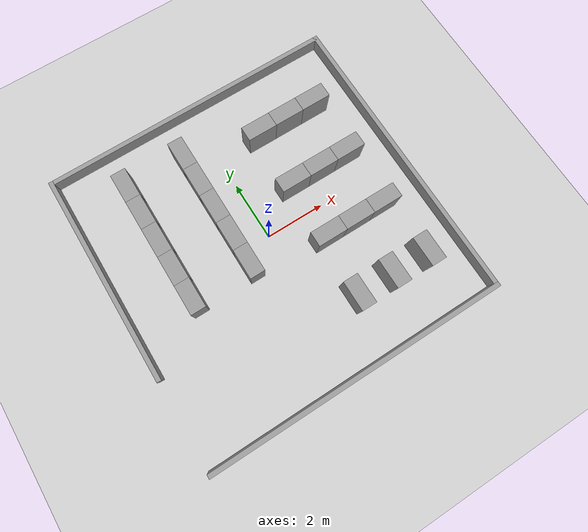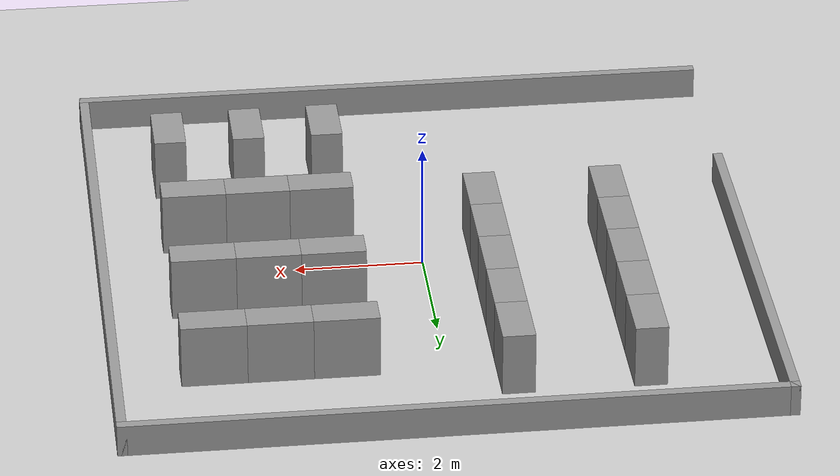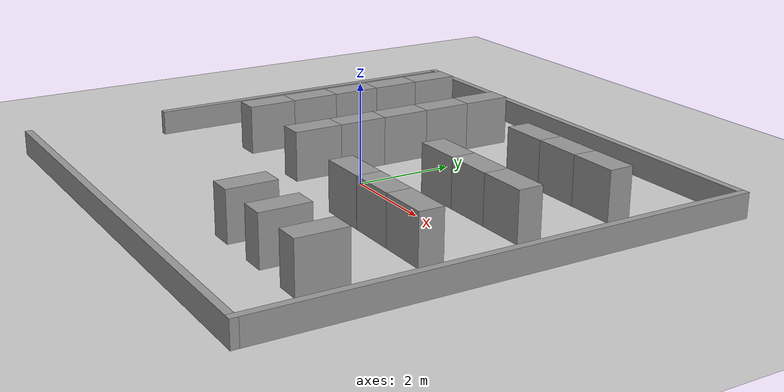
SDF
<sdf version="1.6">
 <world name="default">
  <light name="sun" type="directional">
   <pose>0 0 10 0 -0 0</pose>
   <diffuse>0.8 0.8 0.8 1</diffuse>
   <specular>0.1 0.1 0.1 1</specular>
   <attenuation>
    <range>1000</range>
    <constant>0.9</constant>
    <linear>0.01</linear>
    <quadratic>0.001</quadratic>
   </attenuation>
   <direction>-0.5 0.5 -1</direction>
  </light>
  <model name="ground_plane">
   <static>1</static>
   <link name="link">
    <collision name="collision">
     <geometry><plane><normal>0 0 1</normal><size>100 100</size></plane></geometry>
     <surface><friction><ode><mu>100</mu><mu2>50</mu2></ode></friction></surface>
    </collision>
    <visual name="visual">
     <cast_shadows>0</cast_shadows>
     <geometry><plane><normal>0 0 1</normal><size>100 100</size></plane></geometry>
     <material>
      <script><uri>file://media/materials/scripts/gazebo.material</uri><name>Gazebo/Grey</name></script>
     </material>
    </visual>
   </link>
  </model>
  <gravity>0 0 -9.8</gravity>
  <magnetic_field>6e-06 2.3e-05 -4.2e-05</magnetic_field>
  <atmosphere type="adiabatic"/>
  <physics name="default_physics" default="0" type="ode">
   <max_step_size>0.001</max_step_size>
   <real_time_factor>1</real_time_factor>
   <real_time_update_rate>1000</real_time_update_rate>
  </physics>
  <scene><ambient>0.4 0.4 0.4 1</ambient><background>0.7 0.7 0.7 1</background><shadows>1</shadows></scene>
  <spherical_coordinates>
   <surface_model>EARTH_WGS84</surface_model>
   <latitude_deg>0</latitude_deg>
   <longitude_deg>0</longitude_deg>
   <elevation>0</elevation>
   <heading_deg>0</heading_deg>
  </spherical_coordinates>
  <model name="room">
   <link name="Wall_1">
    <collision name="Wall_1_Collision">
     <geometry><box><size>10.15 0.15 0.5</size></box></geometry>
     <pose>0 0 0.25 0 -0 0</pose>
    </collision>
    <visual name="Wall_1_Visual">
     <pose>0 0 0.25 0 -0 0</pose>
     <geometry><box><size>10.15 0.15 0.5</size></box></geometry>
     <material>
      <script><uri>file://media/materials/scripts/gazebo.material</uri><name>Gazebo/Grey</name></script>
      <ambient>1 1 1 1</ambient>
     </material>
    </visual>
    <pose>0 5 0 0 -0 0</pose>
   </link>
   <link name="Wall_2">
    <collision name="Wall_2_Collision">
     <geometry><box><size>10.15 0.15 0.5</size></box></geometry>
     <pose>0 0 0.25 0 -0 0</pose>
    </collision>
    <visual name="Wall_2_Visual">
     <pose>0 0 0.25 0 -0 0</pose>
     <geometry><box><size>10.15 0.15 0.5</size></box></geometry>
     <material>
      <script><uri>file://media/materials/scripts/gazebo.material</uri><name>Gazebo/Grey</name></script>
      <ambient>1 1 1 1</ambient>
     </material>
    </visual>
    <pose>5 0 0 0 0 -1.5708</pose>
   </link>
   <link name="Wall_3">
    <collision name="Wall_3_Collision">
     <geometry><box><size>10.15 0.15 0.5</size></box></geometry>
     <pose>0 0 0.25 0 -0 0</pose>
    </collision>
    <visual name="Wall_3_Visual">
     <pose>0 0 0.25 0 -0 0</pose>
     <geometry><box><size>10.15 0.15 0.5</size></box></geometry>
     <material>
      <script><uri>file://media/materials/scripts/gazebo.material</uri><name>Gazebo/Grey</name></script>
      <ambient>1 1 1 1</ambient>
     </material>
    </visual>
    <pose>0 -5 0 0 -0 3.14159</pose>
   </link>
   <link name="Wall_7">
    <collision name="Wall_7_Collision">
     <geometry><box><size>7.15 0.15 0.5</size></box></geometry>
     <pose>0 0 0.25 0 -0 0</pose>
    </collision>
    <visual name="Wall_7_Visual">
     <pose>0 0 0.25 0 -0 0</pose>
     <geometry><box><size>7.15 0.15 0.5</size></box></geometry>
     <material>
      <script><uri>file://media/materials/scripts/gazebo.material</uri><name>Gazebo/Grey</name></script>
      <ambient>1 1 1 1</ambient>
     </material>
    </visual>
    <pose>-5 1.5 0 0 0 -1.5708</pose>
   </link>
   <static>1</static>
  </model>
  <model name="stack_0">
   <link name="link_0">
    <inertial>
     <mass>100</mass>
     <inertia>
      <ixx>0.166667</ixx>
      <ixy>0</ixy>
      <ixz>0</ixz>
      <iyy>0.166667</iyy>
      <iyz>0</iyz>
      <izz>0.166667</izz>
     </inertia>
    </inertial>
    <visual name="visual">
     <geometry><box><size>0.5 1 1</size></box></geometry>
     <material>
      <lighting>1</lighting>
      <script><uri>file://media/materials/scripts/gazebo.material</uri><name>Gazebo/Grey</name></script>
      <ambient>0.3 0.3 0.3 1</ambient>
      <diffuse>0.7 0.7 0.7 1</diffuse>
      <specular>0.01 0.01 0.01 1</specular>
      <emissive>0 0 0 1</emissive>
      <shader type="vertex"><normal_map>__default__</normal_map></shader>
     </material>
    </visual>
    <collision name="collision">
     <geometry><box><size>0.5 1 1</size></box></geometry>
     <surface>
      <friction>
       <ode><mu>1</mu><mu2>1</mu2><fdir1>0 0 0</fdir1><slip1>0</slip1><slip2>0</slip2></ode>
       <torsional>
        <coefficient>1</coefficient>
        <patch_radius>0</patch_radius>
        <surface_radius>0</surface_radius>
        <use_patch_radius>1</use_patch_radius>
        <ode><slip>0</slip></ode>
       </torsional>
      </friction>
      <bounce><restitution_coefficient>0</restitution_coefficient><threshold>1e+06</threshold></bounce>
      <contact>
       <collide_without_contact>0</collide_without_contact>
       <collide_without_contact_bitmask>1</collide_without_contact_bitmask>
       <collide_bitmask>1</collide_bitmask>
       <ode>
        <soft_cfm>0</soft_cfm>
        <soft_erp>0.2</soft_erp>
        <kp>1e+13</kp>
        <kd>1</kd>
        <max_vel>0.01</max_vel>
        <min_depth>0</min_depth>
       </ode>
       <bullet>
        <split_impulse>1</split_impulse>
        <split_impulse_penetration_threshold>-0.01</split_impulse_penetration_threshold>
        <soft_cfm>0</soft_cfm>
        <soft_erp>0.2</soft_erp>
        <kp>1e+13</kp>
        <kd>1</kd>
       </bullet>
      </contact>
     </surface>
    </collision>
   </link>
   <static>1</static>
   <pose>-3 2.5 0.5 0 -0 0</pose>
  </model>
  <model name="stack_1">
   <link name="link_0">
    <inertial>
     <mass>100</mass>
     <inertia>
      <ixx>0.166667</ixx>
      <ixy>0</ixy>
      <ixz>0</ixz>
      <iyy>0.166667</iyy>
      <iyz>0</iyz>
      <izz>0.166667</izz>
     </inertia>
    </inertial>
    <visual name="visual">
     <geometry><box><size>0.5 1 1</size></box></geometry>
     <material>
      <lighting>1</lighting>
      <script><uri>file://media/materials/scripts/gazebo.material</uri><name>Gazebo/Grey</name></script>
      <ambient>0.3 0.3 0.3 1</ambient>
      <diffuse>0.7 0.7 0.7 1</diffuse>
      <specular>0.01 0.01 0.01 1</specular>
      <emissive>0 0 0 1</emissive>
      <shader type="vertex"><normal_map>__default__</normal_map></shader>
     </material>
    </visual>
    <collision name="collision">
     <geometry><box><size>0.5 1 1</size></box></geometry>
     <surface>
      <friction>
       <ode><mu>1</mu><mu2>1</mu2><fdir1>0 0 0</fdir1><slip1>0</slip1><slip2>0</slip2></ode>
       <torsional>
        <coefficient>1</coefficient>
        <patch_radius>0</patch_radius>
        <surface_radius>0</surface_radius>
        <use_patch_radius>1</use_patch_radius>
        <ode><slip>0</slip></ode>
       </torsional>
      </friction>
      <bounce><restitution_coefficient>0</restitution_coefficient><threshold>1e+06</threshold></bounce>
      <contact>
       <collide_without_contact>0</collide_without_contact>
       <collide_without_contact_bitmask>1</collide_without_contact_bitmask>
       <collide_bitmask>1</collide_bitmask>
       <ode>
        <soft_cfm>0</soft_cfm>
        <soft_erp>0.2</soft_erp>
        <kp>1e+13</kp>
        <kd>1</kd>
        <max_vel>0.01</max_vel>
        <min_depth>0</min_depth>
       </ode>
       <bullet>
        <split_impulse>1</split_impulse>
        <split_impulse_penetration_threshold>-0.01</split_impulse_penetration_threshold>
        <soft_cfm>0</soft_cfm>
        <soft_erp>0.2</soft_erp>
        <kp>1e+13</kp>
        <kd>1</kd>
       </bullet>
      </contact>
     </surface>
    </collision>
   </link>
   <static>1</static>
   <pose>-3 1.5 0.5 0 -0 0</pose>
  </model>
  <model name="stack_2">
   <link name="link_0">
    <inertial>
     <mass>100</mass>
     <inertia>
      <ixx>0.166667</ixx>
      <ixy>0</ixy>
      <ixz>0</ixz>
      <iyy>0.166667</iyy>
      <iyz>0</iyz>
      <izz>0.166667</izz>
     </inertia>
    </inertial>
    <visual name="visual">
     <geometry><box><size>0.5 1 1</size></box></geometry>
     <material>
      <lighting>1</lighting>
      <script><uri>file://media/materials/scripts/gazebo.material</uri><name>Gazebo/Grey</name></script>
      <ambient>0.3 0.3 0.3 1</ambient>
      <diffuse>0.7 0.7 0.7 1</diffuse>
      <specular>0.01 0.01 0.01 1</specular>
      <emissive>0 0 0 1</emissive>
      <shader type="vertex"><normal_map>__default__</normal_map></shader>
     </material>
    </visual>
    <collision name="collision">
     <geometry><box><size>0.5 1 1</size></box></geometry>
     <surface>
      <friction>
       <ode><mu>1</mu><mu2>1</mu2><fdir1>0 0 0</fdir1><slip1>0</slip1><slip2>0</slip2></ode>
       <torsional>
        <coefficient>1</coefficient>
        <patch_radius>0</patch_radius>
        <surface_radius>0</surface_radius>
        <use_patch_radius>1</use_patch_radius>
        <ode><slip>0</slip></ode>
       </torsional>
      </friction>
      <bounce><restitution_coefficient>0</restitution_coefficient><threshold>1e+06</threshold></bounce>
      <contact>
       <collide_without_contact>0</collide_without_contact>
       <collide_without_contact_bitmask>1</collide_without_contact_bitmask>
       <collide_bitmask>1</collide_bitmask>
       <ode>
        <soft_cfm>0</soft_cfm>
        <soft_erp>0.2</soft_erp>
        <kp>1e+13</kp>
        <kd>1</kd>
        <max_vel>0.01</max_vel>
        <min_depth>0</min_depth>
       </ode>
       <bullet>
        <split_impulse>1</split_impulse>
        <split_impulse_penetration_threshold>-0.01</split_impulse_penetration_threshold>
        <soft_cfm>0</soft_cfm>
        <soft_erp>0.2</soft_erp>
        <kp>1e+13</kp>
        <kd>1</kd>
       </bullet>
      </contact>
     </surface>
    </collision>
   </link>
   <static>1</static>
   <pose>-3 0.5 0.5 0 -0 0</pose>
  </model>
  <model name="stack_3">
   <link name="link_0">
    <inertial>
     <mass>100</mass>
     <inertia>
      <ixx>0.166667</ixx>
      <ixy>0</ixy>
      <ixz>0</ixz>
      <iyy>0.166667</iyy>
      <iyz>0</iyz>
      <izz>0.166667</izz>
     </inertia>
    </inertial>
    <visual name="visual">
     <geometry><box><size>0.5 1 1</size></box></geometry>
     <material>
      <lighting>1</lighting>
      <script><uri>file://media/materials/scripts/gazebo.material</uri><name>Gazebo/Grey</name></script>
      <ambient>0.3 0.3 0.3 1</ambient>
      <diffuse>0.7 0.7 0.7 1</diffuse>
      <specular>0.01 0.01 0.01 1</specular>
      <emissive>0 0 0 1</emissive>
      <shader type="vertex"><normal_map>__default__</normal_map></shader>
     </material>
    </visual>
    <collision name="collision">
     <geometry><box><size>0.5 1 1</size></box></geometry>
     <surface>
      <friction>
       <ode><mu>1</mu><mu2>1</mu2><fdir1>0 0 0</fdir1><slip1>0</slip1><slip2>0</slip2></ode>
       <torsional>
        <coefficient>1</coefficient>
        <patch_radius>0</patch_radius>
        <surface_radius>0</surface_radius>
        <use_patch_radius>1</use_patch_radius>
        <ode><slip>0</slip></ode>
       </torsional>
      </friction>
      <bounce><restitution_coefficient>0</restitution_coefficient><threshold>1e+06</threshold></bounce>
      <contact>
       <collide_without_contact>0</collide_without_contact>
       <collide_without_contact_bitmask>1</collide_without_contact_bitmask>
       <collide_bitmask>1</collide_bitmask>
       <ode>
        <soft_cfm>0</soft_cfm>
        <soft_erp>0.2</soft_erp>
        <kp>1e+13</kp>
        <kd>1</kd>
        <max_vel>0.01</max_vel>
        <min_depth>0</min_depth>
       </ode>
       <bullet>
        <split_impulse>1</split_impulse>
        <split_impulse_penetration_threshold>-0.01</split_impulse_penetration_threshold>
        <soft_cfm>0</soft_cfm>
        <soft_erp>0.2</soft_erp>
        <kp>1e+13</kp>
        <kd>1</kd>
       </bullet>
      </contact>
     </surface>
    </collision>
   </link>
   <static>1</static>
   <pose>-3 3.5 0.5 0 -0 0</pose>
  </model>
  <model name="stack_4">
   <link name="link_0">
    <inertial>
     <mass>100</mass>
     <inertia>
      <ixx>0.166667</ixx>
      <ixy>0</ixy>
      <ixz>0</ixz>
      <iyy>0.166667</iyy>
      <iyz>0</iyz>
      <izz>0.166667</izz>
     </inertia>
    </inertial>
    <visual name="visual">
     <geometry><box><size>0.5 1 1</size></box></geometry>
     <material>
      <lighting>1</lighting>
      <script><uri>file://media/materials/scripts/gazebo.material</uri><name>Gazebo/Grey</name></script>
      <ambient>0.3 0.3 0.3 1</ambient>
      <diffuse>0.7 0.7 0.7 1</diffuse>
      <specular>0.01 0.01 0.01 1</specular>
      <emissive>0 0 0 1</emissive>
      <shader type="vertex"><normal_map>__default__</normal_map></shader>
     </material>
    </visual>
    <collision name="collision">
     <geometry><box><size>0.5 1 1</size></box></geometry>
     <surface>
      <friction>
       <ode><mu>1</mu><mu2>1</mu2><fdir1>0 0 0</fdir1><slip1>0</slip1><slip2>0</slip2></ode>
       <torsional>
        <coefficient>1</coefficient>
        <patch_radius>0</patch_radius>
        <surface_radius>0</surface_radius>
        <use_patch_radius>1</use_patch_radius>
        <ode><slip>0</slip></ode>
       </torsional>
      </friction>
      <bounce><restitution_coefficient>0</restitution_coefficient><threshold>1e+06</threshold></bounce>
      <contact>
       <collide_without_contact>0</collide_without_contact>
       <collide_without_contact_bitmask>1</collide_without_contact_bitmask>
       <collide_bitmask>1</collide_bitmask>
       <ode>
        <soft_cfm>0</soft_cfm>
        <soft_erp>0.2</soft_erp>
        <kp>1e+13</kp>
        <kd>1</kd>
        <max_vel>0.01</max_vel>
        <min_depth>0</min_depth>
       </ode>
       <bullet>
        <split_impulse>1</split_impulse>
        <split_impulse_penetration_threshold>-0.01</split_impulse_penetration_threshold>
        <soft_cfm>0</soft_cfm>
        <soft_erp>0.2</soft_erp>
        <kp>1e+13</kp>
        <kd>1</kd>
       </bullet>
      </contact>
     </surface>
    </collision>
   </link>
   <static>1</static>
   <pose>-1 3.5 0.5 0 -0 0</pose>
  </model>
  <model name="stack_5">
   <link name="link_0">
    <inertial>
     <mass>100</mass>
     <inertia>
      <ixx>0.166667</ixx>
      <ixy>0</ixy>
      <ixz>0</ixz>
      <iyy>0.166667</iyy>
      <iyz>0</iyz>
      <izz>0.166667</izz>
     </inertia>
    </inertial>
    <visual name="visual">
     <geometry><box><size>0.5 1 1</size></box></geometry>
     <material>
      <lighting>1</lighting>
      <script><uri>file://media/materials/scripts/gazebo.material</uri><name>Gazebo/Grey</name></script>
      <ambient>0.3 0.3 0.3 1</ambient>
      <diffuse>0.7 0.7 0.7 1</diffuse>
      <specular>0.01 0.01 0.01 1</specular>
      <emissive>0 0 0 1</emissive>
      <shader type="vertex"><normal_map>__default__</normal_map></shader>
     </material>
    </visual>
    <collision name="collision">
     <geometry><box><size>0.5 1 1</size></box></geometry>
     <surface>
      <friction>
       <ode><mu>1</mu><mu2>1</mu2><fdir1>0 0 0</fdir1><slip1>0</slip1><slip2>0</slip2></ode>
       <torsional>
        <coefficient>1</coefficient>
        <patch_radius>0</patch_radius>
        <surface_radius>0</surface_radius>
        <use_patch_radius>1</use_patch_radius>
        <ode><slip>0</slip></ode>
       </torsional>
      </friction>
      <bounce><restitution_coefficient>0</restitution_coefficient><threshold>1e+06</threshold></bounce>
      <contact>
       <collide_without_contact>0</collide_without_contact>
       <collide_without_contact_bitmask>1</collide_without_contact_bitmask>
       <collide_bitmask>1</collide_bitmask>
       <ode>
        <soft_cfm>0</soft_cfm>
        <soft_erp>0.2</soft_erp>
        <kp>1e+13</kp>
        <kd>1</kd>
        <max_vel>0.01</max_vel>
        <min_depth>0</min_depth>
       </ode>
       <bullet>
        <split_impulse>1</split_impulse>
        <split_impulse_penetration_threshold>-0.01</split_impulse_penetration_threshold>
        <soft_cfm>0</soft_cfm>
        <soft_erp>0.2</soft_erp>
        <kp>1e+13</kp>
        <kd>1</kd>
       </bullet>
      </contact>
     </surface>
    </collision>
   </link>
   <static>1</static>
   <pose>-1 2.5 0.5 0 -0 0</pose>
  </model>
  <model name="stack_6">
   <link name="link_0">
    <inertial>
     <mass>100</mass>
     <inertia>
      <ixx>0.166667</ixx>
      <ixy>0</ixy>
      <ixz>0</ixz>
      <iyy>0.166667</iyy>
      <iyz>0</iyz>
      <izz>0.166667</izz>
     </inertia>
    </inertial>
    <visual name="visual">
     <geometry><box><size>0.5 1 1</size></box></geometry>
     <material>
      <lighting>1</lighting>
      <script><uri>file://media/materials/scripts/gazebo.material</uri><name>Gazebo/Grey</name></script>
      <ambient>0.3 0.3 0.3 1</ambient>
      <diffuse>0.7 0.7 0.7 1</diffuse>
      <specular>0.01 0.01 0.01 1</specular>
      <emissive>0 0 0 1</emissive>
      <shader type="vertex"><normal_map>__default__</normal_map></shader>
     </material>
    </visual>
    <collision name="collision">
     <geometry><box><size>0.5 1 1</size></box></geometry>
     <surface>
      <friction>
       <ode><mu>1</mu><mu2>1</mu2><fdir1>0 0 0</fdir1><slip1>0</slip1><slip2>0</slip2></ode>
       <torsional>
        <coefficient>1</coefficient>
        <patch_radius>0</patch_radius>
        <surface_radius>0</surface_radius>
        <use_patch_radius>1</use_patch_radius>
        <ode><slip>0</slip></ode>
       </torsional>
      </friction>
      <bounce><restitution_coefficient>0</restitution_coefficient><threshold>1e+06</threshold></bounce>
      <contact>
       <collide_without_contact>0</collide_without_contact>
       <collide_without_contact_bitmask>1</collide_without_contact_bitmask>
       <collide_bitmask>1</collide_bitmask>
       <ode>
        <soft_cfm>0</soft_cfm>
        <soft_erp>0.2</soft_erp>
        <kp>1e+13</kp>
        <kd>1</kd>
        <max_vel>0.01</max_vel>
        <min_depth>0</min_depth>
       </ode>
       <bullet>
        <split_impulse>1</split_impulse>
        <split_impulse_penetration_threshold>-0.01</split_impulse_penetration_threshold>
        <soft_cfm>0</soft_cfm>
        <soft_erp>0.2</soft_erp>
        <kp>1e+13</kp>
        <kd>1</kd>
       </bullet>
      </contact>
     </surface>
    </collision>
   </link>
   <static>1</static>
   <pose>-1 1.5 0.5 0 -0 0</pose>
  </model>
  <model name="stack_7">
   <link name="link_0">
    <inertial>
     <mass>100</mass>
     <inertia>
      <ixx>0.166667</ixx>
      <ixy>0</ixy>
      <ixz>0</ixz>
      <iyy>0.166667</iyy>
      <iyz>0</iyz>
      <izz>0.166667</izz>
     </inertia>
    </inertial>
    <visual name="visual">
     <geometry><box><size>0.5 1 1</size></box></geometry>
     <material>
      <lighting>1</lighting>
      <script><uri>file://media/materials/scripts/gazebo.material</uri><name>Gazebo/Grey</name></script>
      <ambient>0.3 0.3 0.3 1</ambient>
      <diffuse>0.7 0.7 0.7 1</diffuse>
      <specular>0.01 0.01 0.01 1</specular>
      <emissive>0 0 0 1</emissive>
      <shader type="vertex"><normal_map>__default__</normal_map></shader>
     </material>
    </visual>
    <collision name="collision">
     <geometry><box><size>0.5 1 1</size></box></geometry>
     <surface>
      <friction>
       <ode><mu>1</mu><mu2>1</mu2><fdir1>0 0 0</fdir1><slip1>0</slip1><slip2>0</slip2></ode>
       <torsional>
        <coefficient>1</coefficient>
        <patch_radius>0</patch_radius>
        <surface_radius>0</surface_radius>
        <use_patch_radius>1</use_patch_radius>
        <ode><slip>0</slip></ode>
       </torsional>
      </friction>
      <bounce><restitution_coefficient>0</restitution_coefficient><threshold>1e+06</threshold></bounce>
      <contact>
       <collide_without_contact>0</collide_without_contact>
       <collide_without_contact_bitmask>1</collide_without_contact_bitmask>
       <collide_bitmask>1</collide_bitmask>
       <ode>
        <soft_cfm>0</soft_cfm>
        <soft_erp>0.2</soft_erp>
        <kp>1e+13</kp>
        <kd>1</kd>
        <max_vel>0.01</max_vel>
        <min_depth>0</min_depth>
       </ode>
       <bullet>
        <split_impulse>1</split_impulse>
        <split_impulse_penetration_threshold>-0.01</split_impulse_penetration_threshold>
        <soft_cfm>0</soft_cfm>
        <soft_erp>0.2</soft_erp>
        <kp>1e+13</kp>
        <kd>1</kd>
       </bullet>
      </contact>
     </surface>
    </collision>
   </link>
   <static>1</static>
   <pose>-1 0.5 0.5 0 -0 0</pose>
  </model>
  <model name="stack_8">
   <link name="link_0">
    <inertial>
     <mass>100</mass>
     <inertia>
      <ixx>0.166667</ixx>
      <ixy>0</ixy>
      <ixz>0</ixz>
      <iyy>0.166667</iyy>
      <iyz>0</iyz>
      <izz>0.166667</izz>
     </inertia>
    </inertial>
    <visual name="visual">
     <geometry><box><size>0.5 1 1</size></box></geometry>
     <material>
      <lighting>1</lighting>
      <script><uri>file://media/materials/scripts/gazebo.material</uri><name>Gazebo/Grey</name></script>
      <ambient>0.3 0.3 0.3 1</ambient>
      <diffuse>0.7 0.7 0.7 1</diffuse>
      <specular>0.01 0.01 0.01 1</specular>
      <emissive>0 0 0 1</emissive>
      <shader type="vertex"><normal_map>__default__</normal_map></shader>
     </material>
    </visual>
    <collision name="collision">
     <geometry><box><size>0.5 1 1</size></box></geometry>
     <surface>
      <friction>
       <ode><mu>1</mu><mu2>1</mu2><fdir1>0 0 0</fdir1><slip1>0</slip1><slip2>0</slip2></ode>
       <torsional>
        <coefficient>1</coefficient>
        <patch_radius>0</patch_radius>
        <surface_radius>0</surface_radius>
        <use_patch_radius>1</use_patch_radius>
        <ode><slip>0</slip></ode>
       </torsional>
      </friction>
      <bounce><restitution_coefficient>0</restitution_coefficient><threshold>1e+06</threshold></bounce>
      <contact>
       <collide_without_contact>0</collide_without_contact>
       <collide_without_contact_bitmask>1</collide_without_contact_bitmask>
       <collide_bitmask>1</collide_bitmask>
       <ode>
        <soft_cfm>0</soft_cfm>
        <soft_erp>0.2</soft_erp>
        <kp>1e+13</kp>
        <kd>1</kd>
        <max_vel>0.01</max_vel>
        <min_depth>0</min_depth>
       </ode>
       <bullet>
        <split_impulse>1</split_impulse>
        <split_impulse_penetration_threshold>-0.01</split_impulse_penetration_threshold>
        <soft_cfm>0</soft_cfm>
        <soft_erp>0.2</soft_erp>
        <kp>1e+13</kp>
        <kd>1</kd>
       </bullet>
      </contact>
     </surface>
    </collision>
   </link>
   <static>1</static>
   <pose>1.5 3 0.5 0 -0 1.57</pose>
  </model>
  <model name="stack_9">
   <link name="link_0">
    <inertial>
     <mass>100</mass>
     <inertia>
      <ixx>0.166667</ixx>
      <ixy>0</ixy>
      <ixz>0</ixz>
      <iyy>0.166667</iyy>
      <iyz>0</iyz>
      <izz>0.166667</izz>
     </inertia>
    </inertial>
    <visual name="visual">
     <geometry><box><size>0.5 1 1</size></box></geometry>
     <material>
      <lighting>1</lighting>
      <script><uri>file://media/materials/scripts/gazebo.material</uri><name>Gazebo/Grey</name></script>
      <ambient>0.3 0.3 0.3 1</ambient>
      <diffuse>0.7 0.7 0.7 1</diffuse>
      <specular>0.01 0.01 0.01 1</specular>
      <emissive>0 0 0 1</emissive>
      <shader type="vertex"><normal_map>__default__</normal_map></shader>
     </material>
    </visual>
    <collision name="collision">
     <geometry><box><size>0.5 1 1</size></box></geometry>
     <surface>
      <friction>
       <ode><mu>1</mu><mu2>1</mu2><fdir1>0 0 0</fdir1><slip1>0</slip1><slip2>0</slip2></ode>
       <torsional>
        <coefficient>1</coefficient>
        <patch_radius>0</patch_radius>
        <surface_radius>0</surface_radius>
        <use_patch_radius>1</use_patch_radius>
        <ode><slip>0</slip></ode>
       </torsional>
      </friction>
      <bounce><restitution_coefficient>0</restitution_coefficient><threshold>1e+06</threshold></bounce>
      <contact>
       <collide_without_contact>0</collide_without_contact>
       <collide_without_contact_bitmask>1</collide_without_contact_bitmask>
       <collide_bitmask>1</collide_bitmask>
       <ode>
        <soft_cfm>0</soft_cfm>
        <soft_erp>0.2</soft_erp>
        <kp>1e+13</kp>
        <kd>1</kd>
        <max_vel>0.01</max_vel>
        <min_depth>0</min_depth>
       </ode>
       <bullet>
        <split_impulse>1</split_impulse>
        <split_impulse_penetration_threshold>-0.01</split_impulse_penetration_threshold>
        <soft_cfm>0</soft_cfm>
        <soft_erp>0.2</soft_erp>
        <kp>1e+13</kp>
        <kd>1</kd>
       </bullet>
      </contact>
     </surface>
    </collision>
   </link>
   <static>1</static>
   <pose>2.5 3 0.5 0 -0 1.57</pose>
  </model>
  <model name="stack_10">
   <link name="link_0">
    <inertial>
     <mass>100</mass>
     <inertia>
      <ixx>0.166667</ixx>
      <ixy>0</ixy>
      <ixz>0</ixz>
      <iyy>0.166667</iyy>
      <iyz>0</iyz>
      <izz>0.166667</izz>
     </inertia>
    </inertial>
    <visual name="visual">
     <geometry><box><size>0.5 1 1</size></box></geometry>
     <material>
      <lighting>1</lighting>
      <script><uri>file://media/materials/scripts/gazebo.material</uri><name>Gazebo/Grey</name></script>
      <ambient>0.3 0.3 0.3 1</ambient>
      <diffuse>0.7 0.7 0.7 1</diffuse>
      <specular>0.01 0.01 0.01 1</specular>
      <emissive>0 0 0 1</emissive>
      <shader type="vertex"><normal_map>__default__</normal_map></shader>
     </material>
    </visual>
    <collision name="collision">
     <geometry><box><size>0.5 1 1</size></box></geometry>
     <surface>
      <friction>
       <ode><mu>1</mu><mu2>1</mu2><fdir1>0 0 0</fdir1><slip1>0</slip1><slip2>0</slip2></ode>
       <torsional>
        <coefficient>1</coefficient>
        <patch_radius>0</patch_radius>
        <surface_radius>0</surface_radius>
        <use_patch_radius>1</use_patch_radius>
        <ode><slip>0</slip></ode>
       </torsional>
      </friction>
      <bounce><restitution_coefficient>0</restitution_coefficient><threshold>1e+06</threshold></bounce>
      <contact>
       <collide_without_contact>0</collide_without_contact>
       <collide_without_contact_bitmask>1</collide_without_contact_bitmask>
       <collide_bitmask>1</collide_bitmask>
       <ode>
        <soft_cfm>0</soft_cfm>
        <soft_erp>0.2</soft_erp>
        <kp>1e+13</kp>
        <kd>1</kd>
        <max_vel>0.01</max_vel>
        <min_depth>0</min_depth>
       </ode>
       <bullet>
        <split_impulse>1</split_impulse>
        <split_impulse_penetration_threshold>-0.01</split_impulse_penetration_threshold>
        <soft_cfm>0</soft_cfm>
        <soft_erp>0.2</soft_erp>
        <kp>1e+13</kp>
        <kd>1</kd>
       </bullet>
      </contact>
     </surface>
    </collision>
   </link>
   <static>1</static>
   <pose>3.5 3 0.5 0 -0 1.57</pose>
  </model>
  <model name="stack_11">
   <link name="link_0">
    <inertial>
     <mass>100</mass>
     <inertia>
      <ixx>0.166667</ixx>
      <ixy>0</ixy>
      <ixz>0</ixz>
      <iyy>0.166667</iyy>
      <iyz>0</iyz>
      <izz>0.166667</izz>
     </inertia>
    </inertial>
    <visual name="visual">
     <geometry><box><size>0.5 1 1</size></box></geometry>
     <material>
      <lighting>1</lighting>
      <script><uri>file://media/materials/scripts/gazebo.material</uri><name>Gazebo/Grey</name></script>
      <ambient>0.3 0.3 0.3 1</ambient>
      <diffuse>0.7 0.7 0.7 1</diffuse>
      <specular>0.01 0.01 0.01 1</specular>
      <emissive>0 0 0 1</emissive>
      <shader type="vertex"><normal_map>__default__</normal_map></shader>
     </material>
    </visual>
    <collision name="collision">
     <geometry><box><size>0.5 1 1</size></box></geometry>
     <surface>
      <friction>
       <ode><mu>1</mu><mu2>1</mu2><fdir1>0 0 0</fdir1><slip1>0</slip1><slip2>0</slip2></ode>
       <torsional>
        <coefficient>1</coefficient>
        <patch_radius>0</patch_radius>
        <surface_radius>0</surface_radius>
        <use_patch_radius>1</use_patch_radius>
        <ode><slip>0</slip></ode>
       </torsional>
      </friction>
      <bounce><restitution_coefficient>0</restitution_coefficient><threshold>1e+06</threshold></bounce>
      <contact>
       <collide_without_contact>0</collide_without_contact>
       <collide_without_contact_bitmask>1</collide_without_contact_bitmask>
       <collide_bitmask>1</collide_bitmask>
       <ode>
        <soft_cfm>0</soft_cfm>
        <soft_erp>0.2</soft_erp>
        <kp>1e+13</kp>
        <kd>1</kd>
        <max_vel>0.01</max_vel>
        <min_depth>0</min_depth>
       </ode>
       <bullet>
        <split_impulse>1</split_impulse>
        <split_impulse_penetration_threshold>-0.01</split_impulse_penetration_threshold>
        <soft_cfm>0</soft_cfm>
        <soft_erp>0.2</soft_erp>
        <kp>1e+13</kp>
        <kd>1</kd>
       </bullet>
      </contact>
     </surface>
    </collision>
   </link>
   <static>1</static>
   <pose>1.5 1 0.5 0 -0 1.57</pose>
  </model>
  <model name="stack_12">
   <link name="link_0">
    <inertial>
     <mass>100</mass>
     <inertia>
      <ixx>0.166667</ixx>
      <ixy>0</ixy>
      <ixz>0</ixz>
      <iyy>0.166667</iyy>
      <iyz>0</iyz>
      <izz>0.166667</izz>
     </inertia>
    </inertial>
    <visual name="visual">
     <geometry><box><size>0.5 1 1</size></box></geometry>
     <material>
      <lighting>1</lighting>
      <script><uri>file://media/materials/scripts/gazebo.material</uri><name>Gazebo/Grey</name></script>
      <ambient>0.3 0.3 0.3 1</ambient>
      <diffuse>0.7 0.7 0.7 1</diffuse>
      <specular>0.01 0.01 0.01 1</specular>
      <emissive>0 0 0 1</emissive>
      <shader type="vertex"><normal_map>__default__</normal_map></shader>
     </material>
    </visual>
    <collision name="collision">
     <geometry><box><size>0.5 1 1</size></box></geometry>
     <surface>
      <friction>
       <ode><mu>1</mu><mu2>1</mu2><fdir1>0 0 0</fdir1><slip1>0</slip1><slip2>0</slip2></ode>
       <torsional>
        <coefficient>1</coefficient>
        <patch_radius>0</patch_radius>
        <surface_radius>0</surface_radius>
        <use_patch_radius>1</use_patch_radius>
        <ode><slip>0</slip></ode>
       </torsional>
      </friction>
      <bounce><restitution_coefficient>0</restitution_coefficient><threshold>1e+06</threshold></bounce>
      <contact>
       <collide_without_contact>0</collide_without_contact>
       <collide_without_contact_bitmask>1</collide_without_contact_bitmask>
       <collide_bitmask>1</collide_bitmask>
       <ode>
        <soft_cfm>0</soft_cfm>
        <soft_erp>0.2</soft_erp>
        <kp>1e+13</kp>
        <kd>1</kd>
        <max_vel>0.01</max_vel>
        <min_depth>0</min_depth>
       </ode>
       <bullet>
        <split_impulse>1</split_impulse>
        <split_impulse_penetration_threshold>-0.01</split_impulse_penetration_threshold>
        <soft_cfm>0</soft_cfm>
        <soft_erp>0.2</soft_erp>
        <kp>1e+13</kp>
        <kd>1</kd>
       </bullet>
      </contact>
     </surface>
    </collision>
   </link>
   <static>1</static>
   <pose>2.5 1 0.5 0 -0 1.57</pose>
  </model>
  <model name="stack_13">
   <link name="link_0">
    <inertial>
     <mass>100</mass>
     <inertia>
      <ixx>0.166667</ixx>
      <ixy>0</ixy>
      <ixz>0</ixz>
      <iyy>0.166667</iyy>
      <iyz>0</iyz>
      <izz>0.166667</izz>
     </inertia>
    </inertial>
    <visual name="visual">
     <geometry><box><size>0.5 1 1</size></box></geometry>
     <material>
      <lighting>1</lighting>
      <script><uri>file://media/materials/scripts/gazebo.material</uri><name>Gazebo/Grey</name></script>
      <ambient>0.3 0.3 0.3 1</ambient>
      <diffuse>0.7 0.7 0.7 1</diffuse>
      <specular>0.01 0.01 0.01 1</specular>
      <emissive>0 0 0 1</emissive>
      <shader type="vertex"><normal_map>__default__</normal_map></shader>
     </material>
    </visual>
    <collision name="collision">
     <geometry><box><size>0.5 1 1</size></box></geometry>
     <surface>
      <friction>
       <ode><mu>1</mu><mu2>1</mu2><fdir1>0 0 0</fdir1><slip1>0</slip1><slip2>0</slip2></ode>
       <torsional>
        <coefficient>1</coefficient>
        <patch_radius>0</patch_radius>
        <surface_radius>0</surface_radius>
        <use_patch_radius>1</use_patch_radius>
        <ode><slip>0</slip></ode>
       </torsional>
      </friction>
      <bounce><restitution_coefficient>0</restitution_coefficient><threshold>1e+06</threshold></bounce>
      <contact>
       <collide_without_contact>0</collide_without_contact>
       <collide_without_contact_bitmask>1</collide_without_contact_bitmask>
       <collide_bitmask>1</collide_bitmask>
       <ode>
        <soft_cfm>0</soft_cfm>
        <soft_erp>0.2</soft_erp>
        <kp>1e+13</kp>
        <kd>1</kd>
        <max_vel>0.01</max_vel>
        <min_depth>0</min_depth>
       </ode>
       <bullet>
        <split_impulse>1</split_impulse>
        <split_impulse_penetration_threshold>-0.01</split_impulse_penetration_threshold>
        <soft_cfm>0</soft_cfm>
        <soft_erp>0.2</soft_erp>
        <kp>1e+13</kp>
        <kd>1</kd>
       </bullet>
      </contact>
     </surface>
    </collision>
   </link>
   <static>1</static>
   <pose>3.5 1 0.5 0 -0 1.57</pose>
  </model>
  <model name="stack_14">
   <link name="link_0">
    <inertial>
     <mass>100</mass>
     <inertia>
      <ixx>0.166667</ixx>
      <ixy>0</ixy>
      <ixz>0</ixz>
      <iyy>0.166667</iyy>
      <iyz>0</iyz>
      <izz>0.166667</izz>
     </inertia>
    </inertial>
    <visual name="visual">
     <geometry><box><size>0.5 1 1</size></box></geometry>
     <material>
      <lighting>1</lighting>
      <script><uri>file://media/materials/scripts/gazebo.material</uri><name>Gazebo/Grey</name></script>
      <ambient>0.3 0.3 0.3 1</ambient>
      <diffuse>0.7 0.7 0.7 1</diffuse>
      <specular>0.01 0.01 0.01 1</specular>
      <emissive>0 0 0 1</emissive>
      <shader type="vertex"><normal_map>__default__</normal_map></shader>
     </material>
    </visual>
    <collision name="collision">
     <geometry><box><size>0.5 1 1</size></box></geometry>
     <surface>
      <friction>
       <ode><mu>1</mu><mu2>1</mu2><fdir1>0 0 0</fdir1><slip1>0</slip1><slip2>0</slip2></ode>
       <torsional>
        <coefficient>1</coefficient>
        <patch_radius>0</patch_radius>
        <surface_radius>0</surface_radius>
        <use_patch_radius>1</use_patch_radius>
        <ode><slip>0</slip></ode>
       </torsional>
      </friction>
      <bounce><restitution_coefficient>0</restitution_coefficient><threshold>1e+06</threshold></bounce>
      <contact>
       <collide_without_contact>0</collide_without_contact>
       <collide_without_contact_bitmask>1</collide_without_contact_bitmask>
       <collide_bitmask>1</collide_bitmask>
       <ode>
        <soft_cfm>0</soft_cfm>
        <soft_erp>0.2</soft_erp>
        <kp>1e+13</kp>
        <kd>1</kd>
        <max_vel>0.01</max_vel>
        <min_depth>0</min_depth>
       </ode>
       <bullet>
        <split_impulse>1</split_impulse>
        <split_impulse_penetration_threshold>-0.01</split_impulse_penetration_threshold>
        <soft_cfm>0</soft_cfm>
        <soft_erp>0.2</soft_erp>
        <kp>1e+13</kp>
        <kd>1</kd>
       </bullet>
      </contact>
     </surface>
    </collision>
   </link>
   <static>1</static>
   <pose>1.5 -1 0.5 0 -0 1.57</pose>
  </model>
  <model name="stack_15">
   <link name="link_0">
    <inertial>
     <mass>100</mass>
     <inertia>
      <ixx>0.166667</ixx>
      <ixy>0</ixy>
      <ixz>0</ixz>
      <iyy>0.166667</iyy>
      <iyz>0</iyz>
      <izz>0.166667</izz>
     </inertia>
    </inertial>
    <visual name="visual">
     <geometry><box><size>0.5 1 1</size></box></geometry>
     <material>
      <lighting>1</lighting>
      <script><uri>file://media/materials/scripts/gazebo.material</uri><name>Gazebo/Grey</name></script>
      <ambient>0.3 0.3 0.3 1</ambient>
      <diffuse>0.7 0.7 0.7 1</diffuse>
      <specular>0.01 0.01 0.01 1</specular>
      <emissive>0 0 0 1</emissive>
      <shader type="vertex"><normal_map>__default__</normal_map></shader>
     </material>
    </visual>
    <collision name="collision">
     <geometry><box><size>0.5 1 1</size></box></geometry>
     <surface>
      <friction>
       <ode><mu>1</mu><mu2>1</mu2><fdir1>0 0 0</fdir1><slip1>0</slip1><slip2>0</slip2></ode>
       <torsional>
        <coefficient>1</coefficient>
        <patch_radius>0</patch_radius>
        <surface_radius>0</surface_radius>
        <use_patch_radius>1</use_patch_radius>
        <ode><slip>0</slip></ode>
       </torsional>
      </friction>
      <bounce><restitution_coefficient>0</restitution_coefficient><threshold>1e+06</threshold></bounce>
      <contact>
       <collide_without_contact>0</collide_without_contact>
       <collide_without_contact_bitmask>1</collide_without_contact_bitmask>
       <collide_bitmask>1</collide_bitmask>
       <ode>
        <soft_cfm>0</soft_cfm>
        <soft_erp>0.2</soft_erp>
        <kp>1e+13</kp>
        <kd>1</kd>
        <max_vel>0.01</max_vel>
        <min_depth>0</min_depth>
       </ode>
       <bullet>
        <split_impulse>1</split_impulse>
        <split_impulse_penetration_threshold>-0.01</split_impulse_penetration_threshold>
        <soft_cfm>0</soft_cfm>
        <soft_erp>0.2</soft_erp>
        <kp>1e+13</kp>
        <kd>1</kd>
       </bullet>
      </contact>
     </surface>
    </collision>
   </link>
   <static>1</static>
   <pose>2.5 -1 0.5 0 -0 1.57</pose>
  </model>
  <model name="stack_16">
   <link name="link_0">
    <inertial>
     <mass>100</mass>
     <inertia>
      <ixx>0.166667</ixx>
      <ixy>0</ixy>
      <ixz>0</ixz>
      <iyy>0.166667</iyy>
      <iyz>0</iyz>
      <izz>0.166667</izz>
     </inertia>
    </inertial>
    <visual name="visual">
     <geometry><box><size>0.5 1 1</size></box></geometry>
     <material>
      <lighting>1</lighting>
      <script><uri>file://media/materials/scripts/gazebo.material</uri><name>Gazebo/Grey</name></script>
      <ambient>0.3 0.3 0.3 1</ambient>
      <diffuse>0.7 0.7 0.7 1</diffuse>
      <specular>0.01 0.01 0.01 1</specular>
      <emissive>0 0 0 1</emissive>
      <shader type="vertex"><normal_map>__default__</normal_map></shader>
     </material>
    </visual>
    <collision name="collision">
     <geometry><box><size>0.5 1 1</size></box></geometry>
     <surface>
      <friction>
       <ode><mu>1</mu><mu2>1</mu2><fdir1>0 0 0</fdir1><slip1>0</slip1><slip2>0</slip2></ode>
       <torsional>
        <coefficient>1</coefficient>
        <patch_radius>0</patch_radius>
        <surface_radius>0</surface_radius>
        <use_patch_radius>1</use_patch_radius>
        <ode><slip>0</slip></ode>
       </torsional>
      </friction>
      <bounce><restitution_coefficient>0</restitution_coefficient><threshold>1e+06</threshold></bounce>
      <contact>
       <collide_without_contact>0</collide_without_contact>
       <collide_without_contact_bitmask>1</collide_without_contact_bitmask>
       <collide_bitmask>1</collide_bitmask>
       <ode>
        <soft_cfm>0</soft_cfm>
        <soft_erp>0.2</soft_erp>
        <kp>1e+13</kp>
        <kd>1</kd>
        <max_vel>0.01</max_vel>
        <min_depth>0</min_depth>
       </ode>
       <bullet>
        <split_impulse>1</split_impulse>
        <split_impulse_penetration_threshold>-0.01</split_impulse_penetration_threshold>
        <soft_cfm>0</soft_cfm>
        <soft_erp>0.2</soft_erp>
        <kp>1e+13</kp>
        <kd>1</kd>
       </bullet>
      </contact>
     </surface>
    </collision>
   </link>
   <static>1</static>
   <pose>3.5 -1 0.5 0 -0 1.57</pose>
  </model>
  <model name="stack_17">
   <link name="link_0">
    <inertial>
     <mass>100</mass>
     <inertia>
      <ixx>0.166667</ixx>
      <ixy>0</ixy>
      <ixz>0</ixz>
      <iyy>0.166667</iyy>
      <iyz>0</iyz>
      <izz>0.166667</izz>
     </inertia>
    </inertial>
    <visual name="visual">
     <geometry><box><size>0.5 1 1</size></box></geometry>
     <material>
      <lighting>1</lighting>
      <script><uri>file://media/materials/scripts/gazebo.material</uri><name>Gazebo/Grey</name></script>
      <ambient>0.3 0.3 0.3 1</ambient>
      <diffuse>0.7 0.7 0.7 1</diffuse>
      <specular>0.01 0.01 0.01 1</specular>
      <emissive>0 0 0 1</emissive>
      <shader type="vertex"><normal_map>__default__</normal_map></shader>
     </material>
    </visual>
    <collision name="collision">
     <geometry><box><size>0.5 1 1</size></box></geometry>
     <surface>
      <friction>
       <ode><mu>1</mu><mu2>1</mu2><fdir1>0 0 0</fdir1><slip1>0</slip1><slip2>0</slip2></ode>
       <torsional>
        <coefficient>1</coefficient>
        <patch_radius>0</patch_radius>
        <surface_radius>0</surface_radius>
        <use_patch_radius>1</use_patch_radius>
        <ode><slip>0</slip></ode>
       </torsional>
      </friction>
      <bounce><restitution_coefficient>0</restitution_coefficient><threshold>1e+06</threshold></bounce>
      <contact>
       <collide_without_contact>0</collide_without_contact>
       <collide_without_contact_bitmask>1</collide_without_contact_bitmask>
       <collide_bitmask>1</collide_bitmask>
       <ode>
        <soft_cfm>0</soft_cfm>
        <soft_erp>0.2</soft_erp>
        <kp>1e+13</kp>
        <kd>1</kd>
        <max_vel>0.01</max_vel>
        <min_depth>0</min_depth>
       </ode>
       <bullet>
        <split_impulse>1</split_impulse>
        <split_impulse_penetration_threshold>-0.01</split_impulse_penetration_threshold>
        <soft_cfm>0</soft_cfm>
        <soft_erp>0.2</soft_erp>
        <kp>1e+13</kp>
        <kd>1</kd>
       </bullet>
      </contact>
     </surface>
    </collision>
   </link>
   <static>1</static>
   <pose>1.25 -3 0.5 0 -0 0</pose>
  </model>
  <model name="stack_18">
   <link name="link_0">
    <inertial>
     <mass>100</mass>
     <inertia>
      <ixx>0.166667</ixx>
      <ixy>0</ixy>
      <ixz>0</ixz>
      <iyy>0.166667</iyy>
      <iyz>0</iyz>
      <izz>0.166667</izz>
     </inertia>
    </inertial>
    <visual name="visual">
     <geometry><box><size>0.5 1 1</size></box></geometry>
     <material>
      <lighting>1</lighting>
      <script><uri>file://media/materials/scripts/gazebo.material</uri><name>Gazebo/Grey</name></script>
      <ambient>0.3 0.3 0.3 1</ambient>
      <diffuse>0.7 0.7 0.7 1</diffuse>
      <specular>0.01 0.01 0.01 1</specular>
      <emissive>0 0 0 1</emissive>
      <shader type="vertex"><normal_map>__default__</normal_map></shader>
     </material>
    </visual>
    <collision name="collision">
     <geometry><box><size>0.5 1 1</size></box></geometry>
     <surface>
      <friction>
       <ode><mu>1</mu><mu2>1</mu2><fdir1>0 0 0</fdir1><slip1>0</slip1><slip2>0</slip2></ode>
       <torsional>
        <coefficient>1</coefficient>
        <patch_radius>0</patch_radius>
        <surface_radius>0</surface_radius>
        <use_patch_radius>1</use_patch_radius>
        <ode><slip>0</slip></ode>
       </torsional>
      </friction>
      <bounce><restitution_coefficient>0</restitution_coefficient><threshold>1e+06</threshold></bounce>
      <contact>
       <collide_without_contact>0</collide_without_contact>
       <collide_without_contact_bitmask>1</collide_without_contact_bitmask>
       <collide_bitmask>1</collide_bitmask>
       <ode>
        <soft_cfm>0</soft_cfm>
        <soft_erp>0.2</soft_erp>
        <kp>1e+13</kp>
        <kd>1</kd>
        <max_vel>0.01</max_vel>
        <min_depth>0</min_depth>
       </ode>
       <bullet>
        <split_impulse>1</split_impulse>
        <split_impulse_penetration_threshold>-0.01</split_impulse_penetration_threshold>
        <soft_cfm>0</soft_cfm>
        <soft_erp>0.2</soft_erp>
        <kp>1e+13</kp>
        <kd>1</kd>
       </bullet>
      </contact>
     </surface>
    </collision>
   </link>
   <static>1</static>
   <pose>2.5 -3 0.5 0 -0 0</pose>
  </model>
  <model name="stack_19">
   <link name="link_0">
    <inertial>
     <mass>100</mass>
     <inertia>
      <ixx>0.166667</ixx>
      <ixy>0</ixy>
      <ixz>0</ixz>
      <iyy>0.166667</iyy>
      <iyz>0</iyz>
      <izz>0.166667</izz>
     </inertia>
    </inertial>
    <visual name="visual">
     <geometry><box><size>0.5 1 1</size></box></geometry>
     <material>
      <lighting>1</lighting>
      <script><uri>file://media/materials/scripts/gazebo.material</uri><name>Gazebo/Grey</name></script>
      <ambient>0.3 0.3 0.3 1</ambient>
      <diffuse>0.7 0.7 0.7 1</diffuse>
      <specular>0.01 0.01 0.01 1</specular>
      <emissive>0 0 0 1</emissive>
      <shader type="vertex"><normal_map>__default__</normal_map></shader>
     </material>
    </visual>
    <collision name="collision">
     <geometry><box><size>0.5 1 1</size></box></geometry>
     <surface>
      <friction>
       <ode><mu>1</mu><mu2>1</mu2><fdir1>0 0 0</fdir1><slip1>0</slip1><slip2>0</slip2></ode>
       <torsional>
        <coefficient>1</coefficient>
        <patch_radius>0</patch_radius>
        <surface_radius>0</surface_radius>
        <use_patch_radius>1</use_patch_radius>
        <ode><slip>0</slip></ode>
       </torsional>
      </friction>
      <bounce><restitution_coefficient>0</restitution_coefficient><threshold>1e+06</threshold></bounce>
      <contact>
       <collide_without_contact>0</collide_without_contact>
       <collide_without_contact_bitmask>1</collide_without_contact_bitmask>
       <collide_bitmask>1</collide_bitmask>
       <ode>
        <soft_cfm>0</soft_cfm>
        <soft_erp>0.2</soft_erp>
        <kp>1e+13</kp>
        <kd>1</kd>
        <max_vel>0.01</max_vel>
        <min_depth>0</min_depth>
       </ode>
       <bullet>
        <split_impulse>1</split_impulse>
        <split_impulse_penetration_threshold>-0.01</split_impulse_penetration_threshold>
        <soft_cfm>0</soft_cfm>
        <soft_erp>0.2</soft_erp>
        <kp>1e+13</kp>
        <kd>1</kd>
       </bullet>
      </contact>
     </surface>
    </collision>
   </link>
   <static>1</static>
   <pose>3.75 -3 0.5 0 -0 0</pose>
  </model>
  <model name="stack_20">
   <link name="link_0">
    <inertial>
     <mass>100</mass>
     <inertia>
      <ixx>0.166667</ixx>
      <ixy>0</ixy>
      <ixz>0</ixz>
      <iyy>0.166667</iyy>
      <iyz>0</iyz>
      <izz>0.166667</izz>
     </inertia>
    </inertial>
    <visual name="visual">
     <geometry><box><size>0.5 1 1</size></box></geometry>
     <material>
      <lighting>1</lighting>
      <script><uri>file://media/materials/scripts/gazebo.material</uri><name>Gazebo/Grey</name></script>
      <ambient>0.3 0.3 0.3 1</ambient>
      <diffuse>0.7 0.7 0.7 1</diffuse>
      <specular>0.01 0.01 0.01 1</specular>
      <emissive>0 0 0 1</emissive>
      <shader type="vertex"><normal_map>__default__</normal_map></shader>
     </material>
    </visual>
    <collision name="collision">
     <geometry><box><size>0.5 1 1</size></box></geometry>
     <surface>
      <friction>
       <ode><mu>1</mu><mu2>1</mu2><fdir1>0 0 0</fdir1><slip1>0</slip1><slip2>0</slip2></ode>
       <torsional>
        <coefficient>1</coefficient>
        <patch_radius>0</patch_radius>
        <surface_radius>0</surface_radius>
        <use_patch_radius>1</use_patch_radius>
        <ode><slip>0</slip></ode>
       </torsional>
      </friction>
      <bounce><restitution_coefficient>0</restitution_coefficient><threshold>1e+06</threshold></bounce>
      <contact>
       <collide_without_contact>0</collide_without_contact>
       <collide_without_contact_bitmask>1</collide_without_contact_bitmask>
       <collide_bitmask>1</collide_bitmask>
       <ode>
        <soft_cfm>0</soft_cfm>
        <soft_erp>0.2</soft_erp>
        <kp>1e+13</kp>
        <kd>1</kd>
        <max_vel>0.01</max_vel>
        <min_depth>0</min_depth>
       </ode>
       <bullet>
        <split_impulse>1</split_impulse>
        <split_impulse_penetration_threshold>-0.01</split_impulse_penetration_threshold>
        <soft_cfm>0</soft_cfm>
        <soft_erp>0.2</soft_erp>
        <kp>1e+13</kp>
        <kd>1</kd>
       </bullet>
      </contact>
     </surface>
    </collision>
   </link>
   <static>1</static>
   <pose>-3 -0.5 0.5 0 -0 0</pose>
  </model>
  <model name="stack_21">
   <link name="link_0">
    <inertial>
     <mass>100</mass>
     <inertia>
      <ixx>0.166667</ixx>
      <ixy>0</ixy>
      <ixz>0</ixz>
      <iyy>0.166667</iyy>
      <iyz>0</iyz>
      <izz>0.166667</izz>
     </inertia>
    </inertial>
    <visual name="visual">
     <geometry><box><size>0.5 1 1</size></box></geometry>
     <material>
      <lighting>1</lighting>
      <script><uri>file://media/materials/scripts/gazebo.material</uri><name>Gazebo/Grey</name></script>
      <ambient>0.3 0.3 0.3 1</ambient>
      <diffuse>0.7 0.7 0.7 1</diffuse>
      <specular>0.01 0.01 0.01 1</specular>
      <emissive>0 0 0 1</emissive>
      <shader type="vertex"><normal_map>__default__</normal_map></shader>
     </material>
    </visual>
    <collision name="collision">
     <geometry><box><size>0.5 1 1</size></box></geometry>
     <surface>
      <friction>
       <ode><mu>1</mu><mu2>1</mu2><fdir1>0 0 0</fdir1><slip1>0</slip1><slip2>0</slip2></ode>
       <torsional>
        <coefficient>1</coefficient>
        <patch_radius>0</patch_radius>
        <surface_radius>0</surface_radius>
        <use_patch_radius>1</use_patch_radius>
        <ode><slip>0</slip></ode>
       </torsional>
      </friction>
      <bounce><restitution_coefficient>0</restitution_coefficient><threshold>1e+06</threshold></bounce>
      <contact>
       <collide_without_contact>0</collide_without_contact>
       <collide_without_contact_bitmask>1</collide_without_contact_bitmask>
       <collide_bitmask>1</collide_bitmask>
       <ode>
        <soft_cfm>0</soft_cfm>
        <soft_erp>0.2</soft_erp>
        <kp>1e+13</kp>
        <kd>1</kd>
        <max_vel>0.01</max_vel>
        <min_depth>0</min_depth>
       </ode>
       <bullet>
        <split_impulse>1</split_impulse>
        <split_impulse_penetration_threshold>-0.01</split_impulse_penetration_threshold>
        <soft_cfm>0</soft_cfm>
        <soft_erp>0.2</soft_erp>
        <kp>1e+13</kp>
        <kd>1</kd>
       </bullet>
      </contact>
     </surface>
    </collision>
   </link>
   <static>1</static>
   <pose>-1 -0.5 0.5 0 -0 0</pose>
  </model>
 </world>
</sdf>
